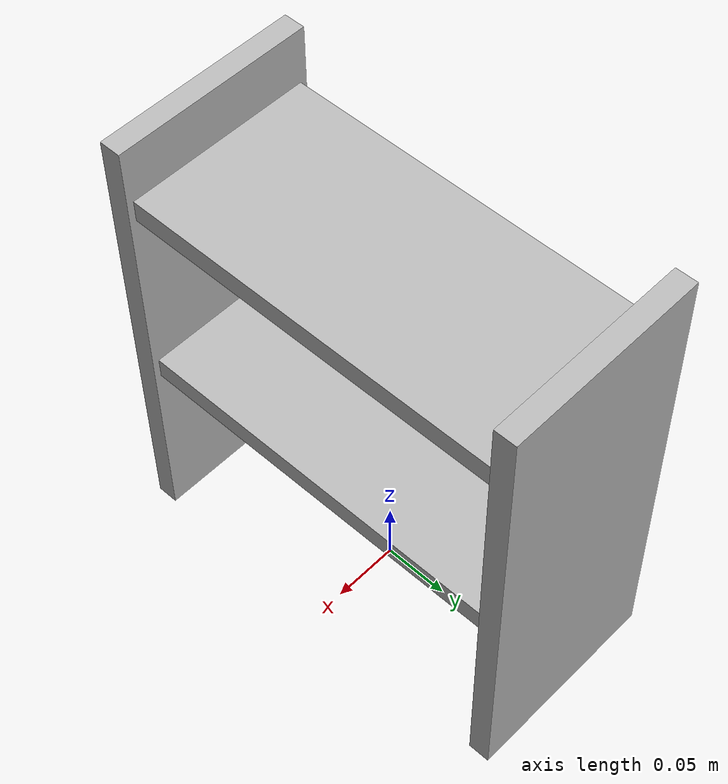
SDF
<sdf version='1.6'>
  <model name='shelf'>

  <link name='shelf_origin_body'>
  <pose> 0 0 0 0 0 0</pose>

  <visual name='right_wall'>
    <pose> 0 0.15 0.175 0 0 0</pose>
    <geometry>
      <box>
       <size>0.15 0.016 0.35</size>
      </box>
    </geometry>
  </visual>

  <visual name='left_wall'>
    <pose> 0 -0.15 0.175 0 0 0</pose>
    <geometry>
      <box>
       <size>0.15 0.016 0.35</size>
      </box>
    </geometry>
  </visual>

  <collision name='right_wall'>
    <pose> 0 0.15 0.175 0 0 0</pose>
    <geometry>
      <box>
       <size>0.15 0.016 0.35</size>
      </box>
    </geometry>
  </collision>

  <collision name='left_wall'>
    <pose> 0 -0.15 0.175 0 0 0</pose>
    <geometry>
      <box>
       <size>0.15 0.016 0.35</size>
      </box>
    </geometry>
  </collision>

  </link>

  <link name='top_and_bottom'>
  <pose> 0 0 0 0 0 0</pose>

  <visual name='top'>
    <pose> 0 0 0.3 0 0 0</pose>
    <geometry>
      <box>
       <size>0.14 0.3 0.016</size>
      </box>
    </geometry>
  </visual>

  <visual name='shelf_lower'>
    <pose> 0 0 0.15 0 0 0</pose>
    <geometry>
      <box>
       <size>0.14 0.3 0.016</size>
      </box>
    </geometry>
  </visual>

  <collision name='top'>
    <pose> 0 0 0.3 0 0 0</pose>
    <geometry>
      <box>
       <size>0.14 0.3 0.016</size>
      </box>
    </geometry>
  </collision>

  <collision name='shelf_lower'>
    <pose> 0 0 0.15 0 0 0</pose>
    <geometry>
      <box>
       <size>0.14 0.3 0.016</size>
      </box>
    </geometry>
  </collision>

 </link>

  <!-- joint between bottom_top and world -->
  <joint name='top_and_bottom_shelf_origin_body' type='fixed'>
    <child>top_and_bottom</child>
    <parent>shelf_origin_body</parent>
    <pose>0 0 0 0 0 0 </pose>
  </joint>

  </model>
</sdf>
